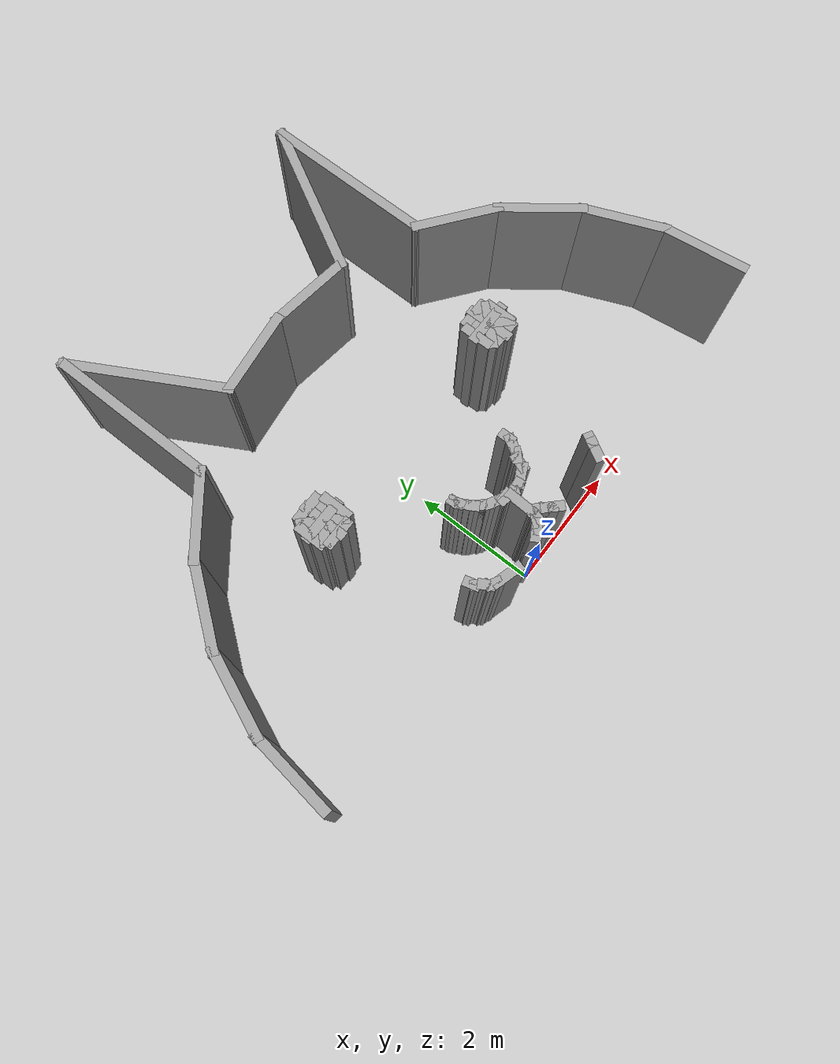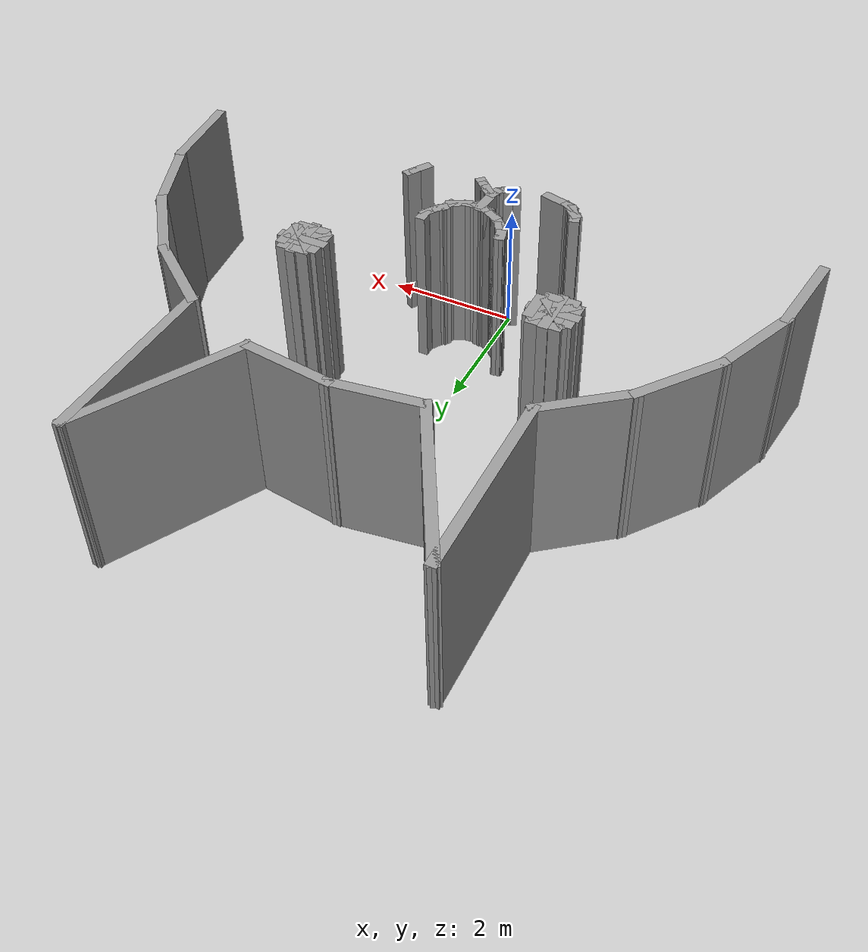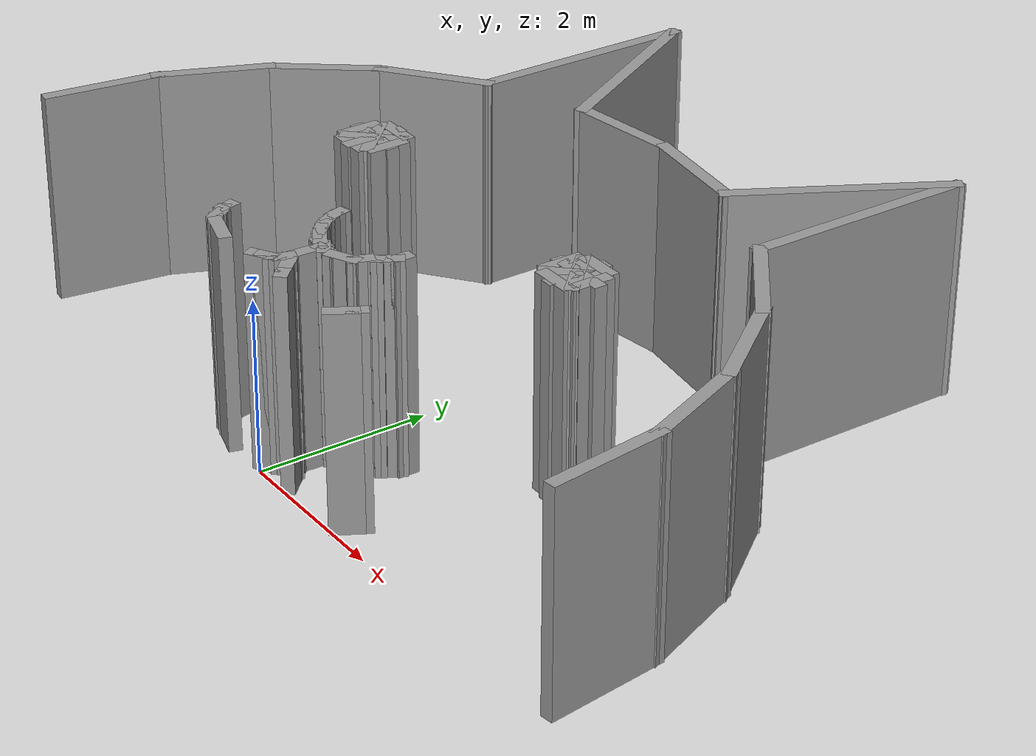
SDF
<sdf version="1.6">
 <model name="cat">
  <pose>0.253474 0.457983 0 0 -0 0</pose>
  <link name="Wall_127">
   <collision name="Wall_127_Collision">
    <geometry><box><size>2.75 0.15 2.5</size></box></geometry>
    <pose>0 0 1.25 0 -0 0</pose>
   </collision>
   <visual name="Wall_127_Visual">
    <pose>0 0 1.25 0 -0 0</pose>
    <geometry><box><size>2.75 0.15 2.5</size></box></geometry>
    <material>
     <script><uri>file://media/materials/scripts/gazebo.material</uri><name>Gazebo/Grey</name></script>
     <ambient>1 1 1 1</ambient>
    </material>
    <meta><layer>0</layer></meta>
   </visual>
   <pose>-2.425 5.12252 0 0 -0 1.5708</pose>
  </link>
  <link name="Wall_128">
   <collision name="Wall_128_Collision">
    <geometry><box><size>2.56734 0.15 2.5</size></box></geometry>
    <pose>0 0 1.25 0 -0 0</pose>
   </collision>
   <visual name="Wall_128_Visual">
    <pose>0 0 1.25 0 -0 0</pose>
    <geometry><box><size>2.56734 0.15 2.5</size></box></geometry>
    <material>
     <script><uri>file://media/materials/scripts/gazebo.material</uri><name>Gazebo/Grey</name></script>
     <ambient>1 1 1 1</ambient>
    </material>
    <meta><layer>0</layer></meta>
   </visual>
   <pose>-1.84014 5.36478 0 0 -0 -1.0657</pose>
  </link>
  <link name="Wall_130">
   <collision name="Wall_130_Collision">
    <geometry><box><size>2.75 0.15 2.5</size></box></geometry>
    <pose>0 0 1.25 0 -0 0</pose>
   </collision>
   <visual name="Wall_130_Visual">
    <pose>0 0 1.25 0 -0 0</pose>
    <geometry><box><size>2.75 0.15 2.5</size></box></geometry>
    <material>
     <script><uri>file://media/materials/scripts/gazebo.material</uri><name>Gazebo/Grey</name></script>
     <ambient>1 1 1 1</ambient>
    </material>
    <meta><layer>0</layer></meta>
   </visual>
   <pose>2.425 5.12252 0 0 -0 1.5708</pose>
  </link>
  <link name="Wall_131">
   <collision name="Wall_131_Collision">
    <geometry><box><size>2.56734 0.15 2.5</size></box></geometry>
    <pose>0 0 1.25 0 -0 0</pose>
   </collision>
   <visual name="Wall_131_Visual">
    <pose>0 0 1.25 0 -0 0</pose>
    <geometry><box><size>2.56734 0.15 2.5</size></box></geometry>
    <material>
     <script><uri>file://media/materials/scripts/gazebo.material</uri><name>Gazebo/Grey</name></script>
     <ambient>1 1 1 1</ambient>
    </material>
    <meta><layer>0</layer></meta>
   </visual>
   <pose>1.84014 5.36478 0 0 -0 -2.07589</pose>
  </link>
  <link name="Wall_139">
   <collision name="Wall_139_Collision">
    <geometry><box><size>0.75 0.15 2.5</size></box></geometry>
    <pose>0 0 1.25 0 -0 0</pose>
   </collision>
   <visual name="Wall_139_Visual">
    <pose>0 0 1.25 0 -0 0</pose>
    <geometry><box><size>0.75 0.15 2.5</size></box></geometry>
    <material>
     <script><uri>file://media/materials/scripts/gazebo.material</uri><name>Gazebo/Grey</name></script>
     <ambient>1 1 1 1</ambient>
    </material>
    <meta><layer>0</layer></meta>
   </visual>
   <pose>-1.94097 2.03692 0 0 -0 0</pose>
  </link>
  <link name="Wall_141">
   <collision name="Wall_141_Collision">
    <geometry><box><size>0.75 0.15 2.5</size></box></geometry>
    <pose>0 0 1.25 0 -0 0</pose>
   </collision>
   <visual name="Wall_141_Visual">
    <pose>0 0 1.25 0 -0 0</pose>
    <geometry><box><size>0.75 0.15 2.5</size></box></geometry>
    <material>
     <script><uri>file://media/materials/scripts/gazebo.material</uri><name>Gazebo/Grey</name></script>
     <ambient>1 1 1 1</ambient>
    </material>
    <meta><layer>0</layer></meta>
   </visual>
   <pose>1.82063 2.03692 0 0 -0 0</pose>
  </link>
  <link name="Wall_143">
   <collision name="Wall_143_Collision">
    <geometry><box><size>0.75 0.15 2.5</size></box></geometry>
    <pose>0 0 1.25 0 -0 0</pose>
   </collision>
   <visual name="Wall_143_Visual">
    <pose>0 0 1.25 0 -0 0</pose>
    <geometry><box><size>0.75 0.15 2.5</size></box></geometry>
    <material>
     <script><uri>file://media/materials/scripts/gazebo.material</uri><name>Gazebo/Grey</name></script>
     <ambient>1 1 1 1</ambient>
    </material>
    <meta><layer>0</layer></meta>
   </visual>
   <pose>-1.93337 2.02695 0 0 -0 -1.5708</pose>
  </link>
  <link name="Wall_145">
   <collision name="Wall_145_Collision">
    <geometry><box><size>0.75 0.15 2.5</size></box></geometry>
    <pose>0 0 1.25 0 -0 0</pose>
   </collision>
   <visual name="Wall_145_Visual">
    <pose>0 0 1.25 0 -0 0</pose>
    <geometry><box><size>0.75 0.15 2.5</size></box></geometry>
    <material>
     <script><uri>file://media/materials/scripts/gazebo.material</uri><name>Gazebo/Grey</name></script>
     <ambient>1 1 1 1</ambient>
    </material>
    <meta><layer>0</layer></meta>
   </visual>
   <pose>1.82824 2.01174 0 0 -0 1.5708</pose>
  </link>
  <link name="Wall_147">
   <collision name="Wall_147_Collision">
    <geometry><box><size>0.75 0.15 2.5</size></box></geometry>
    <pose>0 0 1.25 0 -0 0</pose>
   </collision>
   <visual name="Wall_147_Visual">
    <pose>0 0 1.25 0 -0 0</pose>
    <geometry><box><size>0.75 0.15 2.5</size></box></geometry>
    <material>
     <script><uri>file://media/materials/scripts/gazebo.material</uri><name>Gazebo/Grey</name></script>
     <ambient>1 1 1 1</ambient>
    </material>
    <meta><layer>0</layer></meta>
   </visual>
   <pose>-1.94095 2.02934 0 0 -0 0.785398</pose>
  </link>
  <link name="Wall_149">
   <collision name="Wall_149_Collision">
    <geometry><box><size>0.75 0.15 2.5</size></box></geometry>
    <pose>0 0 1.25 0 -0 0</pose>
   </collision>
   <visual name="Wall_149_Visual">
    <pose>0 0 1.25 0 -0 0</pose>
    <geometry><box><size>0.75 0.15 2.5</size></box></geometry>
    <material>
     <script><uri>file://media/materials/scripts/gazebo.material</uri><name>Gazebo/Grey</name></script>
     <ambient>1 1 1 1</ambient>
    </material>
    <meta><layer>0</layer></meta>
   </visual>
   <pose>-1.94095 2.02693 0 0 -0 -0.785398</pose>
  </link>
  <link name="Wall_151">
   <collision name="Wall_151_Collision">
    <geometry><box><size>0.75 0.15 2.5</size></box></geometry>
    <pose>0 0 1.25 0 -0 0</pose>
   </collision>
   <visual name="Wall_151_Visual">
    <pose>0 0 1.25 0 -0 0</pose>
    <geometry><box><size>0.75 0.15 2.5</size></box></geometry>
    <material>
     <script><uri>file://media/materials/scripts/gazebo.material</uri><name>Gazebo/Grey</name></script>
     <ambient>1 1 1 1</ambient>
    </material>
    <meta><layer>0</layer></meta>
   </visual>
   <pose>1.81186 2.00297 0 0 -0 0.785398</pose>
  </link>
  <link name="Wall_153">
   <collision name="Wall_153_Collision">
    <geometry><box><size>0.75 0.15 2.5</size></box></geometry>
    <pose>0 0 1.25 0 -0 0</pose>
   </collision>
   <visual name="Wall_153_Visual">
    <pose>0 0 1.25 0 -0 0</pose>
    <geometry><box><size>0.75 0.15 2.5</size></box></geometry>
    <material>
     <script><uri>file://media/materials/scripts/gazebo.material</uri><name>Gazebo/Grey</name></script>
     <ambient>1 1 1 1</ambient>
    </material>
    <meta><layer>0</layer></meta>
   </visual>
   <pose>1.82944 2.01814 0 0 -0 -0.785398</pose>
  </link>
  <link name="Wall_155">
   <collision name="Wall_155_Collision">
    <geometry><box><size>0.5 0.15 2.5</size></box></geometry>
    <pose>0 0 1.25 0 -0 0</pose>
   </collision>
   <visual name="Wall_155_Visual">
    <pose>0 0 1.25 0 -0 0</pose>
    <geometry><box><size>0.5 0.15 2.5</size></box></geometry>
    <material>
     <script><uri>file://media/materials/scripts/gazebo.material</uri><name>Gazebo/Grey</name></script>
     <ambient>1 1 1 1</ambient>
    </material>
    <meta><layer>0</layer></meta>
   </visual>
   <pose>-1.92535 2.30938 0 0 -0 0</pose>
  </link>
  <link name="Wall_157">
   <collision name="Wall_157_Collision">
    <geometry><box><size>0.5 0.15 2.5</size></box></geometry>
    <pose>0 0 1.25 0 -0 0</pose>
   </collision>
   <visual name="Wall_157_Visual">
    <pose>0 0 1.25 0 -0 0</pose>
    <geometry><box><size>0.5 0.15 2.5</size></box></geometry>
    <material>
     <script><uri>file://media/materials/scripts/gazebo.material</uri><name>Gazebo/Grey</name></script>
     <ambient>1 1 1 1</ambient>
    </material>
    <meta><layer>0</layer></meta>
   </visual>
   <pose>-1.94293 1.75568 0 0 -0 0</pose>
  </link>
  <link name="Wall_159">
   <collision name="Wall_159_Collision">
    <geometry><box><size>0.5 0.15 2.5</size></box></geometry>
    <pose>0 0 1.25 0 -0 0</pose>
   </collision>
   <visual name="Wall_159_Visual">
    <pose>0 0 1.25 0 -0 0</pose>
    <geometry><box><size>0.5 0.15 2.5</size></box></geometry>
    <material>
     <script><uri>file://media/materials/scripts/gazebo.material</uri><name>Gazebo/Grey</name></script>
     <ambient>1 1 1 1</ambient>
    </material>
    <meta><layer>0</layer></meta>
   </visual>
   <pose>-2.20582 2.01857 0 0 -0 1.5708</pose>
  </link>
  <link name="Wall_163">
   <collision name="Wall_163_Collision">
    <geometry><box><size>0.5 0.15 2.5</size></box></geometry>
    <pose>0 0 1.25 0 -0 0</pose>
   </collision>
   <visual name="Wall_163_Visual">
    <pose>0 0 1.25 0 -0 0</pose>
    <geometry><box><size>0.5 0.15 2.5</size></box></geometry>
    <material>
     <script><uri>file://media/materials/scripts/gazebo.material</uri><name>Gazebo/Grey</name></script>
     <ambient>1 1 1 1</ambient>
    </material>
    <meta><layer>0</layer></meta>
   </visual>
   <pose>-1.6697 2.02012 0 0 -0 -1.5708</pose>
  </link>
  <link name="Wall_165">
   <collision name="Wall_165_Collision">
    <geometry><box><size>0.5 0.15 2.5</size></box></geometry>
    <pose>0 0 1.25 0 -0 0</pose>
   </collision>
   <visual name="Wall_165_Visual">
    <pose>0 0 1.25 0 -0 0</pose>
    <geometry><box><size>0.5 0.15 2.5</size></box></geometry>
    <material>
     <script><uri>file://media/materials/scripts/gazebo.material</uri><name>Gazebo/Grey</name></script>
     <ambient>1 1 1 1</ambient>
    </material>
    <meta><layer>0</layer></meta>
   </visual>
   <pose>1.55578 2.02891 0 0 -0 -1.5708</pose>
  </link>
  <link name="Wall_169">
   <collision name="Wall_169_Collision">
    <geometry><box><size>0.5 0.15 2.5</size></box></geometry>
    <pose>0 0 1.25 0 -0 0</pose>
   </collision>
   <visual name="Wall_169_Visual">
    <pose>0 0 1.25 0 -0 0</pose>
    <geometry><box><size>0.5 0.15 2.5</size></box></geometry>
    <material>
     <script><uri>file://media/materials/scripts/gazebo.material</uri><name>Gazebo/Grey</name></script>
     <ambient>1 1 1 1</ambient>
    </material>
    <meta><layer>0</layer></meta>
   </visual>
   <pose>2.05674 2.00254 0 0 -0 -1.5708</pose>
  </link>
  <link name="Wall_173">
   <collision name="Wall_173_Collision">
    <geometry><box><size>0.5 0.15 2.5</size></box></geometry>
    <pose>0 0 1.25 0 -0 0</pose>
   </collision>
   <visual name="Wall_173_Visual">
    <pose>0 0 1.25 0 -0 0</pose>
    <geometry><box><size>0.5 0.15 2.5</size></box></geometry>
    <material>
     <script><uri>file://media/materials/scripts/gazebo.material</uri><name>Gazebo/Grey</name></script>
     <ambient>1 1 1 1</ambient>
    </material>
    <meta><layer>0</layer></meta>
   </visual>
   <pose>1.81867 2.27422 0 0 -0 0</pose>
  </link>
  <link name="Wall_175">
   <collision name="Wall_175_Collision">
    <geometry><box><size>0.5 0.15 2.5</size></box></geometry>
    <pose>0 0 1.25 0 -0 0</pose>
   </collision>
   <visual name="Wall_175_Visual">
    <pose>0 0 1.25 0 -0 0</pose>
    <geometry><box><size>0.5 0.15 2.5</size></box></geometry>
    <material>
     <script><uri>file://media/materials/scripts/gazebo.material</uri><name>Gazebo/Grey</name></script>
     <ambient>1 1 1 1</ambient>
    </material>
    <meta><layer>0</layer></meta>
   </visual>
   <pose>1.82746 1.75568 0 0 -0 0</pose>
  </link>
  <link name="Wall_180">
   <collision name="Wall_180_Collision">
    <geometry><box><size>0.15 0.15 2.5</size></box></geometry>
    <pose>0 0 1.25 0 -0 0</pose>
   </collision>
   <visual name="Wall_180_Visual">
    <pose>0 0 1.25 0 -0 0</pose>
    <geometry><box><size>0.15 0.15 2.5</size></box></geometry>
    <material>
     <script><uri>file://media/materials/scripts/gazebo.material</uri><name>Gazebo/Grey</name></script>
     <ambient>1 1 1 1</ambient>
    </material>
    <meta><layer>0</layer></meta>
   </visual>
   <pose>-0.621599 0.80645 0 0 -0 0</pose>
  </link>
  <link name="Wall_189">
   <collision name="Wall_189_Collision">
    <geometry><box><size>0.25 0.15 2.5</size></box></geometry>
    <pose>0 0 1.25 0 -0 0</pose>
   </collision>
   <visual name="Wall_189_Visual">
    <pose>0 0 1.25 0 -0 0</pose>
    <geometry><box><size>0.25 0.15 2.5</size></box></geometry>
    <material>
     <script><uri>file://media/materials/scripts/gazebo.material</uri><name>Gazebo/Grey</name></script>
     <ambient>1 1 1 1</ambient>
    </material>
    <meta><layer>0</layer></meta>
   </visual>
   <pose>-0.608658 0.758154 0 0 -0 -1.309</pose>
  </link>
  <link name="Wall_190">
   <collision name="Wall_190_Collision">
    <geometry><box><size>0.25 0.15 2.5</size></box></geometry>
    <pose>0 0 1.25 0 -0 0</pose>
   </collision>
   <visual name="Wall_190_Visual">
    <pose>0 0 1.25 0 -0 0</pose>
    <geometry><box><size>0.25 0.15 2.5</size></box></geometry>
    <material>
     <script><uri>file://media/materials/scripts/gazebo.material</uri><name>Gazebo/Grey</name></script>
     <ambient>1 1 1 1</ambient>
    </material>
    <meta><layer>0</layer></meta>
   </visual>
   <pose>-0.570717 0.666556 0 0 -0 -1.0472</pose>
  </link>
  <link name="Wall_191">
   <collision name="Wall_191_Collision">
    <geometry><box><size>0.25 0.15 2.5</size></box></geometry>
    <pose>0 0 1.25 0 -0 0</pose>
   </collision>
   <visual name="Wall_191_Visual">
    <pose>0 0 1.25 0 -0 0</pose>
    <geometry><box><size>0.25 0.15 2.5</size></box></geometry>
    <material>
     <script><uri>file://media/materials/scripts/gazebo.material</uri><name>Gazebo/Grey</name></script>
     <ambient>1 1 1 1</ambient>
    </material>
    <meta><layer>0</layer></meta>
   </visual>
   <pose>-0.520717 0.579954 0 0 -0 -1.0472</pose>
  </link>
  <link name="Wall_192">
   <collision name="Wall_192_Collision">
    <geometry><box><size>0.25 0.15 2.5</size></box></geometry>
    <pose>0 0 1.25 0 -0 0</pose>
   </collision>
   <visual name="Wall_192_Visual">
    <pose>0 0 1.25 0 -0 0</pose>
    <geometry><box><size>0.25 0.15 2.5</size></box></geometry>
    <material>
     <script><uri>file://media/materials/scripts/gazebo.material</uri><name>Gazebo/Grey</name></script>
     <ambient>1 1 1 1</ambient>
    </material>
    <meta><layer>0</layer></meta>
   </visual>
   <pose>-0.460362 0.501297 0 0 -0 -0.785398</pose>
  </link>
  <link name="Wall_193">
   <collision name="Wall_193_Collision">
    <geometry><box><size>0.25 0.15 2.5</size></box></geometry>
    <pose>0 0 1.25 0 -0 0</pose>
   </collision>
   <visual name="Wall_193_Visual">
    <pose>0 0 1.25 0 -0 0</pose>
    <geometry><box><size>0.25 0.15 2.5</size></box></geometry>
    <material>
     <script><uri>file://media/materials/scripts/gazebo.material</uri><name>Gazebo/Grey</name></script>
     <ambient>1 1 1 1</ambient>
    </material>
    <meta><layer>0</layer></meta>
   </visual>
   <pose>-0.389651 0.430586 0 0 -0 -0.785398</pose>
  </link>
  <link name="Wall_194">
   <collision name="Wall_194_Collision">
    <geometry><box><size>0.25 0.15 2.5</size></box></geometry>
    <pose>0 0 1.25 0 -0 0</pose>
   </collision>
   <visual name="Wall_194_Visual">
    <pose>0 0 1.25 0 -0 0</pose>
    <geometry><box><size>0.25 0.15 2.5</size></box></geometry>
    <material>
     <script><uri>file://media/materials/scripts/gazebo.material</uri><name>Gazebo/Grey</name></script>
     <ambient>1 1 1 1</ambient>
    </material>
    <meta><layer>0</layer></meta>
   </visual>
   <pose>-0.310995 0.370231 0 0 -0 -0.523599</pose>
  </link>
  <link name="Wall_195">
   <collision name="Wall_195_Collision">
    <geometry><box><size>0.25 0.15 2.5</size></box></geometry>
    <pose>0 0 1.25 0 -0 0</pose>
   </collision>
   <visual name="Wall_195_Visual">
    <pose>0 0 1.25 0 -0 0</pose>
    <geometry><box><size>0.25 0.15 2.5</size></box></geometry>
    <material>
     <script><uri>file://media/materials/scripts/gazebo.material</uri><name>Gazebo/Grey</name></script>
     <ambient>1 1 1 1</ambient>
    </material>
    <meta><layer>0</layer></meta>
   </visual>
   <pose>-0.224392 0.320231 0 0 -0 -0.523599</pose>
  </link>
  <link name="Wall_196">
   <collision name="Wall_196_Collision">
    <geometry><box><size>0.1705 0.15 2.5</size></box></geometry>
    <pose>0 0 1.25 0 -0 0</pose>
   </collision>
   <visual name="Wall_196_Visual">
    <pose>0 0 1.25 0 -0 0</pose>
    <geometry><box><size>0.1705 0.15 2.5</size></box></geometry>
    <material>
     <script><uri>file://media/materials/scripts/gazebo.material</uri><name>Gazebo/Grey</name></script>
     <ambient>1 1 1 1</ambient>
    </material>
    <meta><layer>0</layer></meta>
   </visual>
   <pose>-0.183272 0.285392 0 0 -0 -1.7889</pose>
  </link>
  <link name="Wall_197">
   <collision name="Wall_197_Collision">
    <geometry><box><size>0.25 0.15 2.5</size></box></geometry>
    <pose>0 0 1.25 0 -0 0</pose>
   </collision>
   <visual name="Wall_197_Visual">
    <pose>0 0 1.25 0 -0 0</pose>
    <geometry><box><size>0.25 0.15 2.5</size></box></geometry>
    <material>
     <script><uri>file://media/materials/scripts/gazebo.material</uri><name>Gazebo/Grey</name></script>
     <ambient>1 1 1 1</ambient>
    </material>
    <meta><layer>0</layer></meta>
   </visual>
   <pose>-0.125345 0.275552 0 0 -0 0</pose>
  </link>
  <link name="Wall_198">
   <collision name="Wall_198_Collision">
    <geometry><box><size>0.253124 0.15 2.5</size></box></geometry>
    <pose>0 0 1.25 0 -0 0</pose>
   </collision>
   <visual name="Wall_198_Visual">
    <pose>0 0 1.25 0 -0 0</pose>
    <geometry><box><size>0.253124 0.15 2.5</size></box></geometry>
    <material>
     <script><uri>file://media/materials/scripts/gazebo.material</uri><name>Gazebo/Grey</name></script>
     <ambient>1 1 1 1</ambient>
    </material>
    <meta><layer>0</layer></meta>
   </visual>
   <pose>-0.040506 0.250285 0 0 -0 -0.512143</pose>
  </link>
  <link name="Wall_199">
   <collision name="Wall_199_Collision">
    <geometry><box><size>0.216726 0.15 2.5</size></box></geometry>
    <pose>0 0 1.25 0 -0 0</pose>
   </collision>
   <visual name="Wall_199_Visual">
    <pose>0 0 1.25 0 -0 0</pose>
    <geometry><box><size>0.216726 0.15 2.5</size></box></geometry>
    <material>
     <script><uri>file://media/materials/scripts/gazebo.material</uri><name>Gazebo/Grey</name></script>
     <ambient>1 1 1 1</ambient>
    </material>
    <meta><layer>0</layer></meta>
   </visual>
   <pose>-0.02812 0.227851 0 0 -0 -2.92182</pose>
  </link>
  <link name="Wall_200">
   <collision name="Wall_200_Collision">
    <geometry><box><size>0.353108 0.15 2.5</size></box></geometry>
    <pose>0 0 1.25 0 -0 0</pose>
   </collision>
   <visual name="Wall_200_Visual">
    <pose>0 0 1.25 0 -0 0</pose>
    <geometry><box><size>0.353108 0.15 2.5</size></box></geometry>
    <material>
     <script><uri>file://media/materials/scripts/gazebo.material</uri><name>Gazebo/Grey</name></script>
     <ambient>1 1 1 1</ambient>
    </material>
    <meta><layer>0</layer></meta>
   </visual>
   <pose>0.040371 0.240772 0 0 -0 0.099496</pose>
  </link>
  <link name="Wall_201">
   <collision name="Wall_201_Collision">
    <geometry><box><size>0.39855 0.15 2.5</size></box></geometry>
    <pose>0 0 1.25 0 -0 0</pose>
   </collision>
   <visual name="Wall_201_Visual">
    <pose>0 0 1.25 0 -0 0</pose>
    <geometry><box><size>0.39855 0.15 2.5</size></box></geometry>
    <material>
     <script><uri>file://media/materials/scripts/gazebo.material</uri><name>Gazebo/Grey</name></script>
     <ambient>1 1 1 1</ambient>
    </material>
    <meta><layer>0</layer></meta>
   </visual>
   <pose>0.252581 0.296322 0 0 -0 0.463577</pose>
  </link>
  <link name="Wall_202">
   <collision name="Wall_202_Collision">
    <geometry><box><size>0.300203 0.15 2.5</size></box></geometry>
    <pose>0 0 1.25 0 -0 0</pose>
   </collision>
   <visual name="Wall_202_Visual">
    <pose>0 0 1.25 0 -0 0</pose>
    <geometry><box><size>0.300203 0.15 2.5</size></box></geometry>
    <material>
     <script><uri>file://media/materials/scripts/gazebo.material</uri><name>Gazebo/Grey</name></script>
     <ambient>1 1 1 1</ambient>
    </material>
    <meta><layer>0</layer></meta>
   </visual>
   <pose>0.388988 0.412515 0 0 -0 1.22793</pose>
  </link>
  <link name="Wall_203">
   <collision name="Wall_203_Collision">
    <geometry><box><size>0.25 0.15 2.5</size></box></geometry>
    <pose>0 0 1.25 0 -0 0</pose>
   </collision>
   <visual name="Wall_203_Visual">
    <pose>0 0 1.25 0 -0 0</pose>
    <geometry><box><size>0.25 0.15 2.5</size></box></geometry>
    <material>
     <script><uri>file://media/materials/scripts/gazebo.material</uri><name>Gazebo/Grey</name></script>
     <ambient>1 1 1 1</ambient>
    </material>
    <meta><layer>0</layer></meta>
   </visual>
   <pose>0.449591 0.5186 0 0 -0 0.785398</pose>
  </link>
  <link name="Wall_204">
   <collision name="Wall_204_Collision">
    <geometry><box><size>0.25 0.15 2.5</size></box></geometry>
    <pose>0 0 1.25 0 -0 0</pose>
   </collision>
   <visual name="Wall_204_Visual">
    <pose>0 0 1.25 0 -0 0</pose>
    <geometry><box><size>0.25 0.15 2.5</size></box></geometry>
    <material>
     <script><uri>file://media/materials/scripts/gazebo.material</uri><name>Gazebo/Grey</name></script>
     <ambient>1 1 1 1</ambient>
    </material>
    <meta><layer>0</layer></meta>
   </visual>
   <pose>0.509947 0.597257 0 0 -0 1.0472</pose>
  </link>
  <link name="Wall_205">
   <collision name="Wall_205_Collision">
    <geometry><box><size>0.25 0.15 2.5</size></box></geometry>
    <pose>0 0 1.25 0 -0 0</pose>
   </collision>
   <visual name="Wall_205_Visual">
    <pose>0 0 1.25 0 -0 0</pose>
    <geometry><box><size>0.25 0.15 2.5</size></box></geometry>
    <material>
     <script><uri>file://media/materials/scripts/gazebo.material</uri><name>Gazebo/Grey</name></script>
     <ambient>1 1 1 1</ambient>
    </material>
    <meta><layer>0</layer></meta>
   </visual>
   <pose>0.559947 0.683859 0 0 -0 1.0472</pose>
  </link>
  <link name="Wall_206">
   <collision name="Wall_206_Collision">
    <geometry><box><size>0.25 0.15 2.5</size></box></geometry>
    <pose>0 0 1.25 0 -0 0</pose>
   </collision>
   <visual name="Wall_206_Visual">
    <pose>0 0 1.25 0 -0 0</pose>
    <geometry><box><size>0.25 0.15 2.5</size></box></geometry>
    <material>
     <script><uri>file://media/materials/scripts/gazebo.material</uri><name>Gazebo/Grey</name></script>
     <ambient>1 1 1 1</ambient>
    </material>
    <meta><layer>0</layer></meta>
   </visual>
   <pose>0.584947 0.777161 0 0 -0 1.5708</pose>
  </link>
  <link name="Wall_216">
   <collision name="Wall_216_Collision">
    <geometry><box><size>0.507922 0.15 2.5</size></box></geometry>
    <pose>0 0 1.25 0 -0 0</pose>
   </collision>
   <visual name="Wall_216_Visual">
    <pose>0 0 1.25 0 -0 0</pose>
    <geometry><box><size>0.507922 0.15 2.5</size></box></geometry>
    <material>
     <script><uri>file://media/materials/scripts/gazebo.material</uri><name>Gazebo/Grey</name></script>
     <ambient>1 1 1 1</ambient>
    </material>
    <meta><layer>0</layer></meta>
   </visual>
   <pose>-0.06828 0.051885 0 0 -0 -1.61327</pose>
  </link>
  <link name="Wall_217">
   <collision name="Wall_217_Collision">
    <geometry><box><size>0.25 0.15 2.5</size></box></geometry>
    <pose>0 0 1.25 0 -0 0</pose>
   </collision>
   <visual name="Wall_217_Visual">
    <pose>0 0 1.25 0 -0 0</pose>
    <geometry><box><size>0.25 0.15 2.5</size></box></geometry>
    <material>
     <script><uri>file://media/materials/scripts/gazebo.material</uri><name>Gazebo/Grey</name></script>
     <ambient>1 1 1 1</ambient>
    </material>
    <meta><layer>0</layer></meta>
   </visual>
   <pose>-0.085021 -0.175211 0 0 -0 -1.8326</pose>
  </link>
  <link name="Wall_218">
   <collision name="Wall_218_Collision">
    <geometry><box><size>0.234051 0.15 2.5</size></box></geometry>
    <pose>0 0 1.25 0 -0 0</pose>
   </collision>
   <visual name="Wall_218_Visual">
    <pose>0 0 1.25 0 -0 0</pose>
    <geometry><box><size>0.234051 0.15 2.5</size></box></geometry>
    <material>
     <script><uri>file://media/materials/scripts/gazebo.material</uri><name>Gazebo/Grey</name></script>
     <ambient>1 1 1 1</ambient>
    </material>
    <meta><layer>0</layer></meta>
   </visual>
   <pose>-0.129517 -0.255063 0 0 -0 -2.29222</pose>
  </link>
  <link name="Wall_219">
   <collision name="Wall_219_Collision">
    <geometry><box><size>0.25 0.15 2.5</size></box></geometry>
    <pose>0 0 1.25 0 -0 0</pose>
   </collision>
   <visual name="Wall_219_Visual">
    <pose>0 0 1.25 0 -0 0</pose>
    <geometry><box><size>0.25 0.15 2.5</size></box></geometry>
    <material>
     <script><uri>file://media/materials/scripts/gazebo.material</uri><name>Gazebo/Grey</name></script>
     <ambient>1 1 1 1</ambient>
    </material>
    <meta><layer>0</layer></meta>
   </visual>
   <pose>-0.200575 -0.311619 0 0 -0 -2.61799</pose>
  </link>
  <link name="Wall_220">
   <collision name="Wall_220_Collision">
    <geometry><box><size>0.25 0.15 2.5</size></box></geometry>
    <pose>0 0 1.25 0 -0 0</pose>
   </collision>
   <visual name="Wall_220_Visual">
    <pose>0 0 1.25 0 -0 0</pose>
    <geometry><box><size>0.25 0.15 2.5</size></box></geometry>
    <material>
     <script><uri>file://media/materials/scripts/gazebo.material</uri><name>Gazebo/Grey</name></script>
     <ambient>1 1 1 1</ambient>
    </material>
    <meta><layer>0</layer></meta>
   </visual>
   <pose>-0.287177 -0.361619 0 0 -0 -2.61799</pose>
  </link>
  <link name="Wall_226">
   <collision name="Wall_226_Collision">
    <geometry><box><size>0.501938 0.15 2.5</size></box></geometry>
    <pose>0 0 1.25 0 -0 0</pose>
   </collision>
   <visual name="Wall_226_Visual">
    <pose>0 0 1.25 0 -0 0</pose>
    <geometry><box><size>0.501938 0.15 2.5</size></box></geometry>
    <material>
     <script><uri>file://media/materials/scripts/gazebo.material</uri><name>Gazebo/Grey</name></script>
     <ambient>1 1 1 1</ambient>
    </material>
    <meta><layer>0</layer></meta>
   </visual>
   <pose>-0.992701 -0.3967 0 0 -0 2.85997</pose>
  </link>
  <link name="Wall_227">
   <collision name="Wall_227_Collision">
    <geometry><box><size>0.25 0.15 2.5</size></box></geometry>
    <pose>0 0 1.25 0 -0 0</pose>
   </collision>
   <visual name="Wall_227_Visual">
    <pose>0 0 1.25 0 -0 0</pose>
    <geometry><box><size>0.25 0.15 2.5</size></box></geometry>
    <material>
     <script><uri>file://media/materials/scripts/gazebo.material</uri><name>Gazebo/Grey</name></script>
     <ambient>1 1 1 1</ambient>
    </material>
    <meta><layer>0</layer></meta>
   </visual>
   <pose>-1.20504 -0.322796 0 0 -0 2.61799</pose>
  </link>
  <link name="Wall_228">
   <collision name="Wall_228_Collision">
    <geometry><box><size>0.25 0.15 2.5</size></box></geometry>
    <pose>0 0 1.25 0 -0 0</pose>
   </collision>
   <visual name="Wall_228_Visual">
    <pose>0 0 1.25 0 -0 0</pose>
    <geometry><box><size>0.25 0.15 2.5</size></box></geometry>
    <material>
     <script><uri>file://media/materials/scripts/gazebo.material</uri><name>Gazebo/Grey</name></script>
     <ambient>1 1 1 1</ambient>
    </material>
    <meta><layer>0</layer></meta>
   </visual>
   <pose>-1.27334 -0.254495 0 0 -0 2.0944</pose>
  </link>
  <link name="Wall_229">
   <collision name="Wall_229_Collision">
    <geometry><box><size>0.25 0.15 2.5</size></box></geometry>
    <pose>0 0 1.25 0 -0 0</pose>
   </collision>
   <visual name="Wall_229_Visual">
    <pose>0 0 1.25 0 -0 0</pose>
    <geometry><box><size>0.25 0.15 2.5</size></box></geometry>
    <material>
     <script><uri>file://media/materials/scripts/gazebo.material</uri><name>Gazebo/Grey</name></script>
     <ambient>1 1 1 1</ambient>
    </material>
    <meta><layer>0</layer></meta>
   </visual>
   <pose>-1.3337 -0.175838 0 0 -0 2.35619</pose>
  </link>
  <link name="Wall_230">
   <collision name="Wall_230_Collision">
    <geometry><box><size>0.25 0.15 2.5</size></box></geometry>
    <pose>0 0 1.25 0 -0 0</pose>
   </collision>
   <visual name="Wall_230_Visual">
    <pose>0 0 1.25 0 -0 0</pose>
    <geometry><box><size>0.25 0.15 2.5</size></box></geometry>
    <material>
     <script><uri>file://media/materials/scripts/gazebo.material</uri><name>Gazebo/Grey</name></script>
     <ambient>1 1 1 1</ambient>
    </material>
    <meta><layer>0</layer></meta>
   </visual>
   <pose>-1.38199 -0.092186 0 0 -0 1.8326</pose>
  </link>
  <link name="Wall_257">
   <collision name="Wall_257_Collision">
    <geometry><box><size>0.25 0.15 2.5</size></box></geometry>
    <pose>0 0 1.25 0 -0 0</pose>
   </collision>
   <visual name="Wall_257_Visual">
    <pose>0 0 1.25 0 -0 0</pose>
    <geometry><box><size>0.25 0.15 2.5</size></box></geometry>
    <material>
     <script><uri>file://media/materials/scripts/gazebo.material</uri><name>Gazebo/Grey</name></script>
     <ambient>1 1 1 1</ambient>
    </material>
    <meta><layer>0</layer></meta>
   </visual>
   <pose>-0.028778 -0.151915 0 0 -0 -0.523599</pose>
  </link>
  <link name="Wall_258">
   <collision name="Wall_258_Collision">
    <geometry><box><size>0.25 0.15 2.5</size></box></geometry>
    <pose>0 0 1.25 0 -0 0</pose>
   </collision>
   <visual name="Wall_258_Visual">
    <pose>0 0 1.25 0 -0 0</pose>
    <geometry><box><size>0.25 0.15 2.5</size></box></geometry>
    <material>
     <script><uri>file://media/materials/scripts/gazebo.material</uri><name>Gazebo/Grey</name></script>
     <ambient>1 1 1 1</ambient>
    </material>
    <meta><layer>0</layer></meta>
   </visual>
   <pose>0.049878 -0.21227 0 0 -0 -0.785398</pose>
  </link>
  <link name="Wall_259">
   <collision name="Wall_259_Collision">
    <geometry><box><size>0.25 0.15 2.5</size></box></geometry>
    <pose>0 0 1.25 0 -0 0</pose>
   </collision>
   <visual name="Wall_259_Visual">
    <pose>0 0 1.25 0 -0 0</pose>
    <geometry><box><size>0.25 0.15 2.5</size></box></geometry>
    <material>
     <script><uri>file://media/materials/scripts/gazebo.material</uri><name>Gazebo/Grey</name></script>
     <ambient>1 1 1 1</ambient>
    </material>
    <meta><layer>0</layer></meta>
   </visual>
   <pose>0.120589 -0.282981 0 0 -0 -0.785398</pose>
  </link>
  <link name="Wall_260">
   <collision name="Wall_260_Collision">
    <geometry><box><size>0.25 0.15 2.5</size></box></geometry>
    <pose>0 0 1.25 0 -0 0</pose>
   </collision>
   <visual name="Wall_260_Visual">
    <pose>0 0 1.25 0 -0 0</pose>
    <geometry><box><size>0.25 0.15 2.5</size></box></geometry>
    <material>
     <script><uri>file://media/materials/scripts/gazebo.material</uri><name>Gazebo/Grey</name></script>
     <ambient>1 1 1 1</ambient>
    </material>
    <meta><layer>0</layer></meta>
   </visual>
   <pose>0.1913 -0.353691 0 0 -0 -0.785398</pose>
  </link>
  <link name="Wall_278">
   <collision name="Wall_278_Collision">
    <geometry><box><size>0.376752 0.15 2.5</size></box></geometry>
    <pose>0 0 1.25 0 -0 0</pose>
   </collision>
   <visual name="Wall_278_Visual">
    <pose>0 0 1.25 0 -0 0</pose>
    <geometry><box><size>0.376752 0.15 2.5</size></box></geometry>
    <material>
     <script><uri>file://media/materials/scripts/gazebo.material</uri><name>Gazebo/Grey</name></script>
     <ambient>1 1 1 1</ambient>
    </material>
    <meta><layer>0</layer></meta>
   </visual>
   <pose>1.1947 -0.301567 0 0 -0 1.04244</pose>
  </link>
  <link name="Wall_279">
   <collision name="Wall_279_Collision">
    <geometry><box><size>0.228813 0.15 2.5</size></box></geometry>
    <pose>0 0 1.25 0 -0 0</pose>
   </collision>
   <visual name="Wall_279_Visual">
    <pose>0 0 1.25 0 -0 0</pose>
    <geometry><box><size>0.228813 0.15 2.5</size></box></geometry>
    <material>
     <script><uri>file://media/materials/scripts/gazebo.material</uri><name>Gazebo/Grey</name></script>
     <ambient>1 1 1 1</ambient>
    </material>
    <meta><layer>0</layer></meta>
   </visual>
   <pose>1.27167 -0.163092 0 0 -0 1.04394</pose>
  </link>
  <link name="Wall_58">
   <collision name="Wall_58_Collision">
    <geometry><box><size>1.4161 0.15 2.5</size></box></geometry>
    <pose>0 0 1.25 0 -0 0</pose>
   </collision>
   <visual name="Wall_58_Visual">
    <pose>0 0 1.25 0 -0 0</pose>
    <geometry><box><size>1.4161 0.15 2.5</size></box></geometry>
    <material>
     <script><uri>file://media/materials/scripts/gazebo.material</uri><name>Gazebo/Grey</name></script>
     <ambient>1 1 1 1</ambient>
    </material>
    <meta><layer>0</layer></meta>
   </visual>
   <pose>-0.627636 4.38967 0 0 -0 -3.01069</pose>
  </link>
  <link name="Wall_60">
   <collision name="Wall_60_Collision">
    <geometry><box><size>1.4161 0.15 2.5</size></box></geometry>
    <pose>0 0 1.25 0 -0 0</pose>
   </collision>
   <visual name="Wall_60_Visual">
    <pose>0 0 1.25 0 -0 0</pose>
    <geometry><box><size>1.4161 0.15 2.5</size></box></geometry>
    <material>
     <script><uri>file://media/materials/scripts/gazebo.material</uri><name>Gazebo/Grey</name></script>
     <ambient>1 1 1 1</ambient>
    </material>
    <meta><layer>0</layer></meta>
   </visual>
   <pose>-2.92723 3.43715 0 0 -0 -2.48709</pose>
  </link>
  <link name="Wall_61">
   <collision name="Wall_61_Collision">
    <geometry><box><size>1.4161 0.15 2.5</size></box></geometry>
    <pose>0 0 1.25 0 -0 0</pose>
   </collision>
   <visual name="Wall_61_Visual">
    <pose>0 0 1.25 0 -0 0</pose>
    <geometry><box><size>1.4161 0.15 2.5</size></box></geometry>
    <material>
     <script><uri>file://media/materials/scripts/gazebo.material</uri><name>Gazebo/Grey</name></script>
     <ambient>1 1 1 1</ambient>
    </material>
    <meta><layer>0</layer></meta>
   </visual>
   <pose>-3.81485 2.54953 0 0 -0 -2.2253</pose>
  </link>
  <link name="Wall_62">
   <collision name="Wall_62_Collision">
    <geometry><box><size>1.4161 0.15 2.5</size></box></geometry>
    <pose>0 0 1.25 0 -0 0</pose>
   </collision>
   <visual name="Wall_62_Visual">
    <pose>0 0 1.25 0 -0 0</pose>
    <geometry><box><size>1.4161 0.15 2.5</size></box></geometry>
    <material>
     <script><uri>file://media/materials/scripts/gazebo.material</uri><name>Gazebo/Grey</name></script>
     <ambient>1 1 1 1</ambient>
    </material>
    <meta><layer>0</layer></meta>
   </visual>
   <pose>-4.44248 1.46243 0 0 -0 -1.96349</pose>
  </link>
  <link name="Wall_63">
   <collision name="Wall_63_Collision">
    <geometry><box><size>1.4161 0.15 2.5</size></box></geometry>
    <pose>0 0 1.25 0 -0 0</pose>
   </collision>
   <visual name="Wall_63_Visual">
    <pose>0 0 1.25 0 -0 0</pose>
    <geometry><box><size>1.4161 0.15 2.5</size></box></geometry>
    <material>
     <script><uri>file://media/materials/scripts/gazebo.material</uri><name>Gazebo/Grey</name></script>
     <ambient>1 1 1 1</ambient>
    </material>
    <meta><layer>0</layer></meta>
   </visual>
   <pose>-4.76737 0.249935 0 0 -0 -1.7017</pose>
  </link>
  <link name="Wall_78">
   <collision name="Wall_78_Collision">
    <geometry><box><size>1.4161 0.15 2.5</size></box></geometry>
    <pose>0 0 1.25 0 -0 0</pose>
   </collision>
   <visual name="Wall_78_Visual">
    <pose>0 0 1.25 0 -0 0</pose>
    <geometry><box><size>1.4161 0.15 2.5</size></box></geometry>
    <material>
     <script><uri>file://media/materials/scripts/gazebo.material</uri><name>Gazebo/Grey</name></script>
     <ambient>1 1 1 1</ambient>
    </material>
    <meta><layer>0</layer></meta>
   </visual>
   <pose>4.76737 0.249935 0 0 -0 1.7017</pose>
  </link>
  <link name="Wall_79">
   <collision name="Wall_79_Collision">
    <geometry><box><size>1.4161 0.15 2.5</size></box></geometry>
    <pose>0 0 1.25 0 -0 0</pose>
   </collision>
   <visual name="Wall_79_Visual">
    <pose>0 0 1.25 0 -0 0</pose>
    <geometry><box><size>1.4161 0.15 2.5</size></box></geometry>
    <material>
     <script><uri>file://media/materials/scripts/gazebo.material</uri><name>Gazebo/Grey</name></script>
     <ambient>1 1 1 1</ambient>
    </material>
    <meta><layer>0</layer></meta>
   </visual>
   <pose>4.44248 1.46243 0 0 -0 1.96349</pose>
  </link>
  <link name="Wall_80">
   <collision name="Wall_80_Collision">
    <geometry><box><size>1.4161 0.15 2.5</size></box></geometry>
    <pose>0 0 1.25 0 -0 0</pose>
   </collision>
   <visual name="Wall_80_Visual">
    <pose>0 0 1.25 0 -0 0</pose>
    <geometry><box><size>1.4161 0.15 2.5</size></box></geometry>
    <material>
     <script><uri>file://media/materials/scripts/gazebo.material</uri><name>Gazebo/Grey</name></script>
     <ambient>1 1 1 1</ambient>
    </material>
    <meta><layer>0</layer></meta>
   </visual>
   <pose>3.81485 2.54953 0 0 -0 2.2253</pose>
  </link>
  <link name="Wall_81">
   <collision name="Wall_81_Collision">
    <geometry><box><size>1.4161 0.15 2.5</size></box></geometry>
    <pose>0 0 1.25 0 -0 0</pose>
   </collision>
   <visual name="Wall_81_Visual">
    <pose>0 0 1.25 0 -0 0</pose>
    <geometry><box><size>1.4161 0.15 2.5</size></box></geometry>
    <material>
     <script><uri>file://media/materials/scripts/gazebo.material</uri><name>Gazebo/Grey</name></script>
     <ambient>1 1 1 1</ambient>
    </material>
    <meta><layer>0</layer></meta>
   </visual>
   <pose>2.92723 3.43715 0 0 -0 2.48709</pose>
  </link>
  <link name="Wall_83">
   <collision name="Wall_83_Collision">
    <geometry><box><size>1.4161 0.15 2.5</size></box></geometry>
    <pose>0 0 1.25 0 -0 0</pose>
   </collision>
   <visual name="Wall_83_Visual">
    <pose>0 0 1.25 0 -0 0</pose>
    <geometry><box><size>1.4161 0.15 2.5</size></box></geometry>
    <material>
     <script><uri>file://media/materials/scripts/gazebo.material</uri><name>Gazebo/Grey</name></script>
     <ambient>1 1 1 1</ambient>
    </material>
    <meta><layer>0</layer></meta>
   </visual>
   <pose>0.627636 4.38967 0 0 -0 3.01069</pose>
  </link>
  <static>1</static>
 </model>
</sdf>
